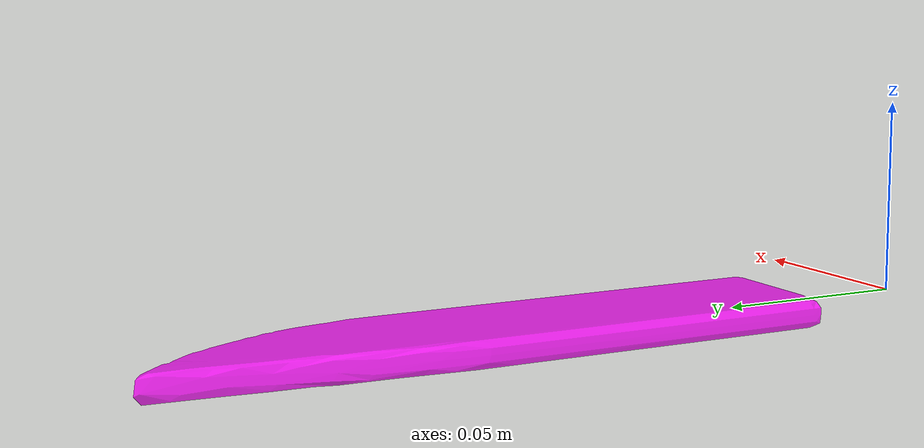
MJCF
<mujoco model="bottom_watertight_tiny">
  <default>
    <default group="2" type="mesh" contype="0" conaffinity="0">
      <geom group="2" type="mesh" contype="0" conaffinity="0"/>
    </default>
    <default group="3" type="mesh">
      <geom group="3" type="mesh"/>
    </default>
  </default>
  <asset>
    <mesh file="bottom_watertight_tiny.obj"/>
    <mesh file="bottom_watertight_tiny_collision_0.obj"/>
    <mesh file="bottom_watertight_tiny_collision_1.obj"/>
    <mesh file="bottom_watertight_tiny_collision_2.obj"/>
    <mesh file="bottom_watertight_tiny_collision_3.obj"/>
  </asset>
  <worldbody>
    <body name="bottom_watertight_tiny">
      <freejoint/>
      <geom mesh="bottom_watertight_tiny" group="2" type="mesh" rgba="1 0 1 0.8" contype="0" conaffinity="0"/>
      <geom mesh="bottom_watertight_tiny_collision_0" rgba="0.1521286200180153 0.7466263775365314 0.7131178922933773 1" group="3" type="mesh"/>
      <geom mesh="bottom_watertight_tiny_collision_1" rgba="0.7796992652864707 0.41851698196047227 0.8150922300966664 1" group="3" type="mesh"/>
      <geom mesh="bottom_watertight_tiny_collision_2" rgba="0.3564191470086906 0.8685764697413094 0.6023980152407363 1" group="3" type="mesh"/>
      <geom mesh="bottom_watertight_tiny_collision_3" rgba="0.6931312118174808 0.74864127794768 0.6886535405777334 1" group="3" type="mesh"/>
    </body>
  </worldbody>
</mujoco>
